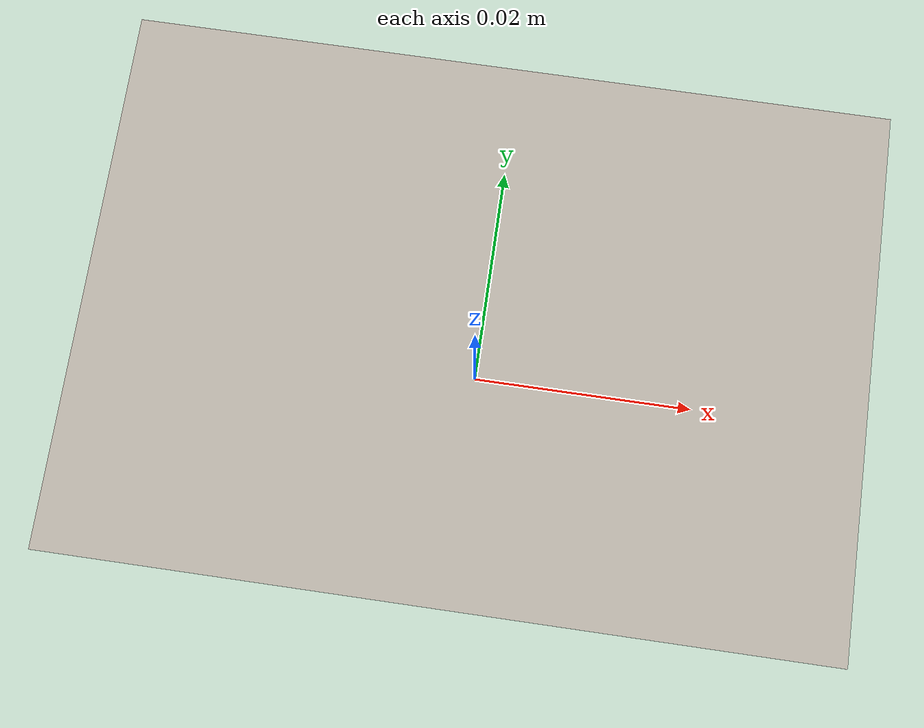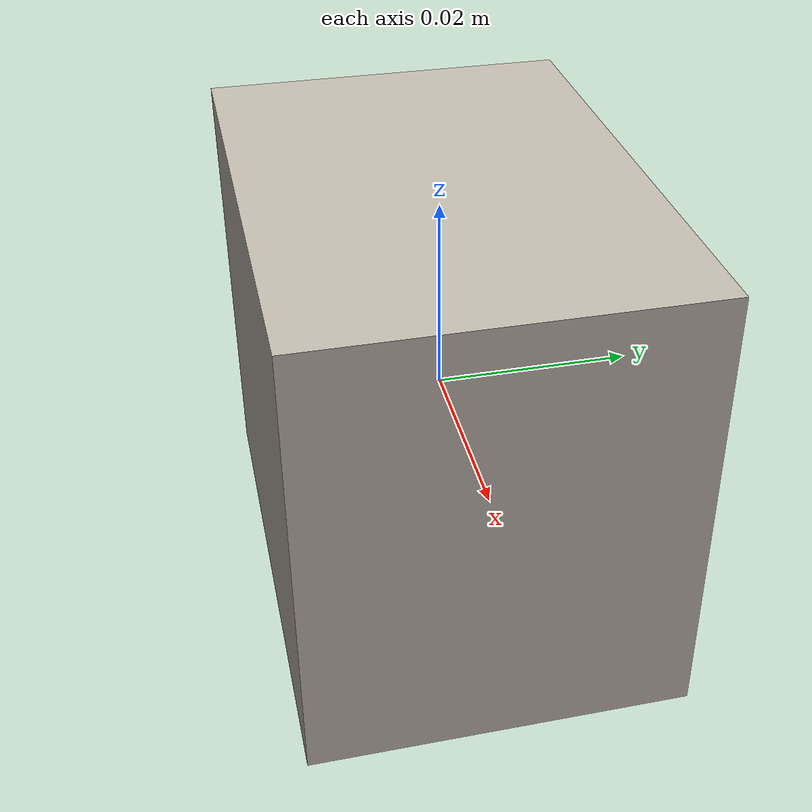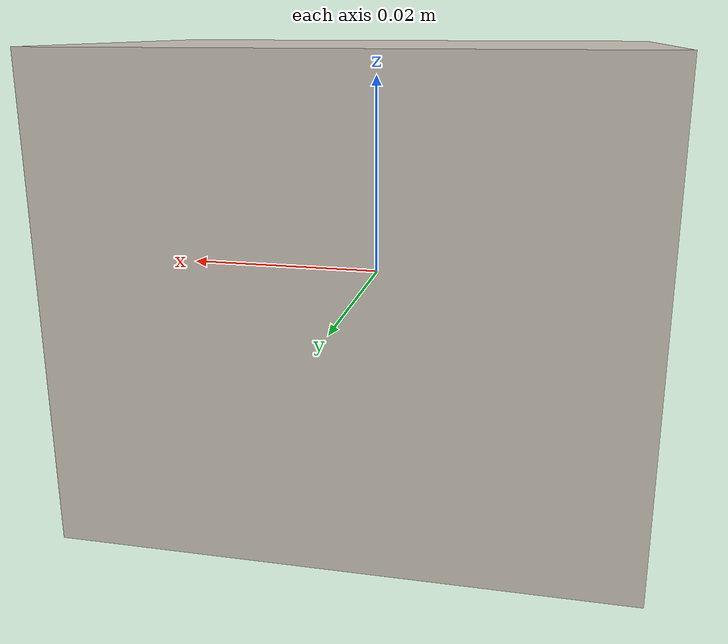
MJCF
<mujoco model="dove">
  <asset>
    <texture file="textures/smallboxes/dove.png" type="2d" name="tex-dove" />
    <material name="dove" reflectance="0.7" texrepeat="15 15" texture="tex-dove" texuniform="true"/>
  </asset>
  <worldbody>
    <body>
      <body name="collision">
        <geom pos="0 0 0" size="0.027 0.019 0.023" type="box" solimp="0.998 0.998 0.001" solref="0.001 1" density="50" friction="0.95 0.3 0.1"  material="dove" group="1" condim="4"/>
      </body>

      <site rgba="0 0 0 0" size="0.005" pos="0 0 -0.045" name="bottom_site"/>
      <site rgba="0 0 0 0" size="0.005" pos="0 0 0.03" name="top_site"/>
      <site rgba="0 0 0 0" size="0.005" pos="0.06 0.06 0" name="horizontal_radius_site"/>
    </body>
  </worldbody>
</mujoco>
